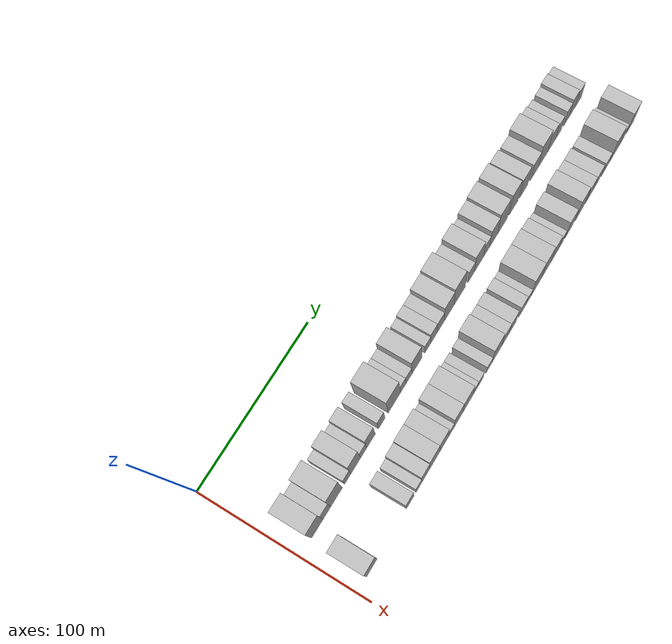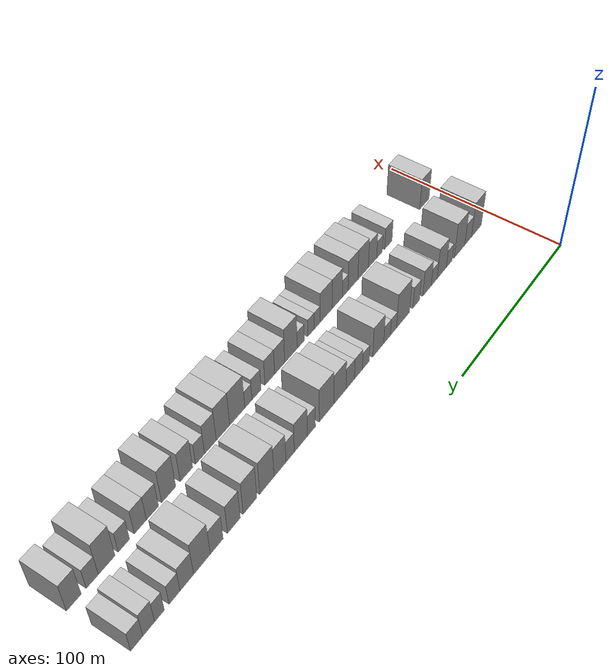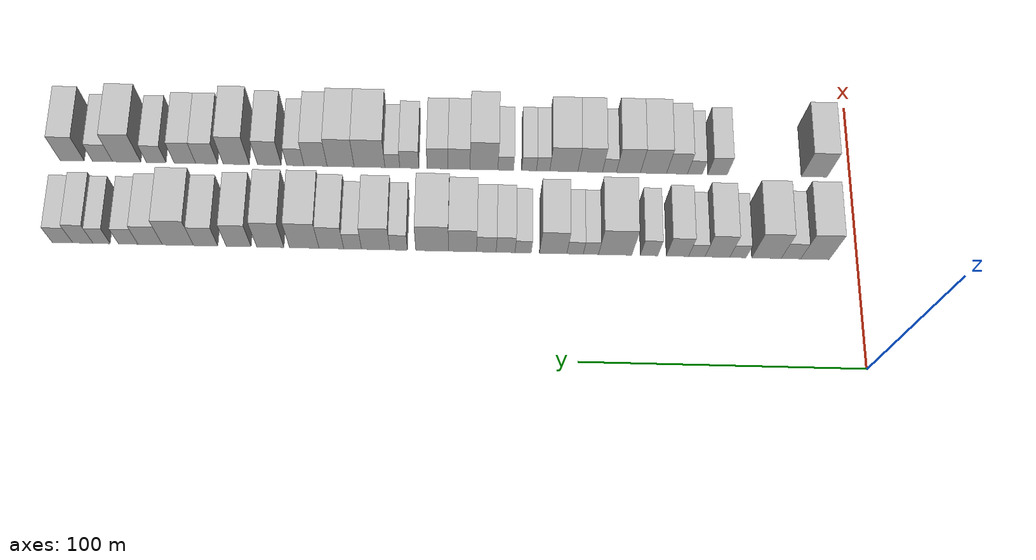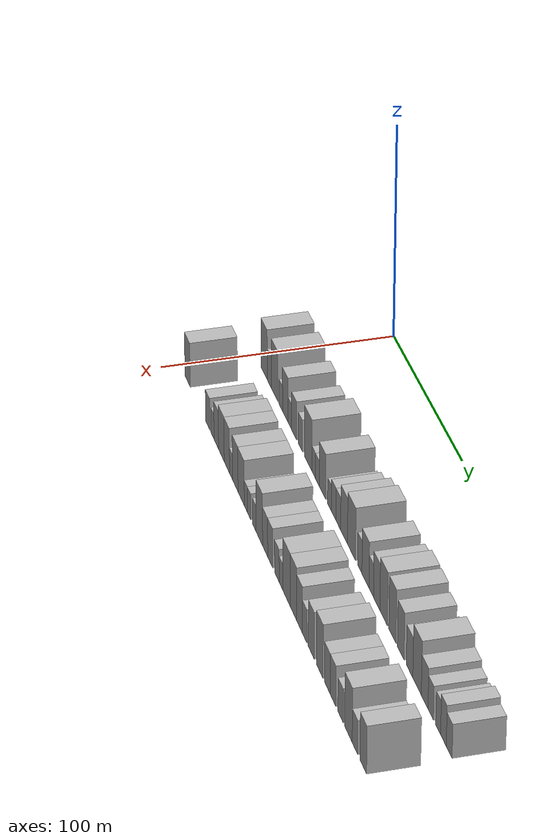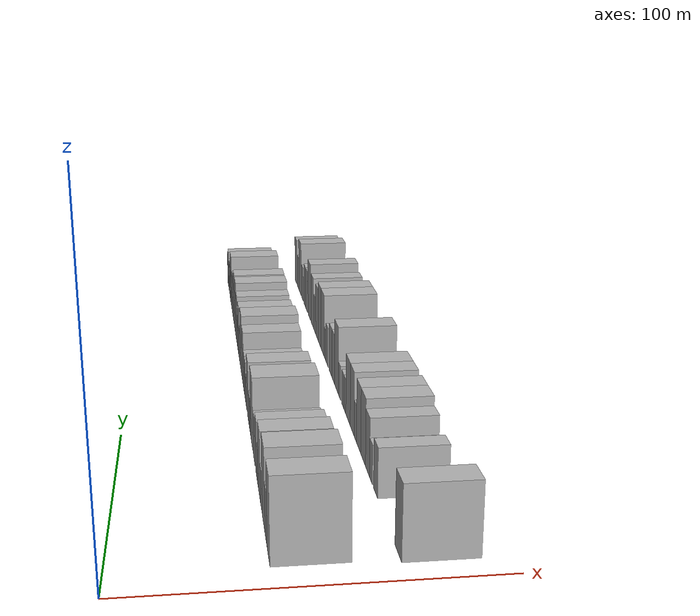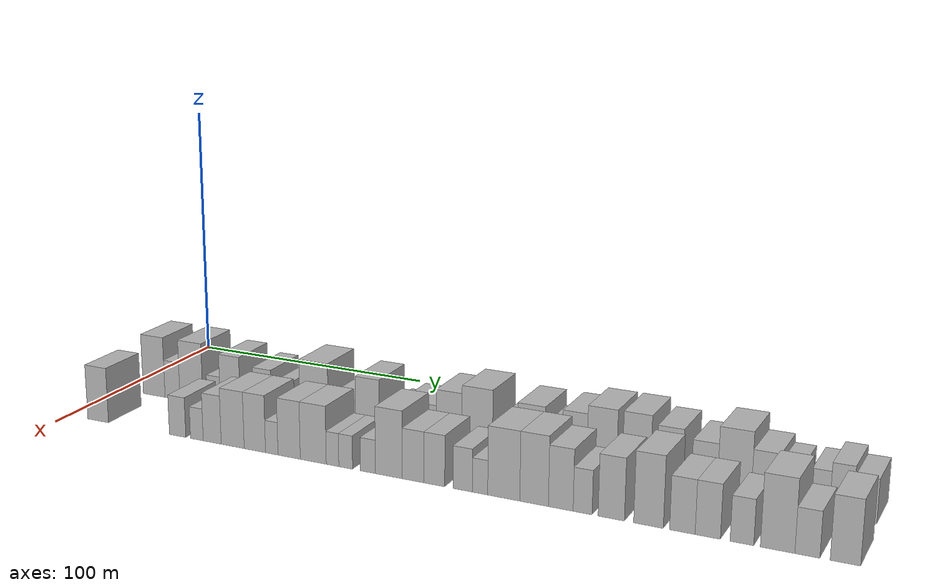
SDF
<sdf version="1.6">
 <world name="default">
  <model name="building_33">
   <static>1</static>
   <pose>50.0000 15.2766 0 0.000000 0.000000 0.000000</pose>
   <link name="link">
    <pose>0 0 12.00 0 0 0</pose>
    <collision name="collision"><geometry><box><size>20.0000 10.1828 24.0000</size></box></geometry></collision>
    <visual name="visual">
     <cast_shadows>0</cast_shadows>
     <geometry><box><size>20.0000 10.1828 24.0000</size></box></geometry>
     <material>
      <script>
       <uri>model://HANNAS_wall/materials/scripts</uri>
       <uri>model://HANNAS_wall/materials/textures</uri>
       <name>vrc/HANNAS_wall</name>
      </script>
     </material>
    </visual>
   </link>
  </model>
  <model name="building_34">
   <static>1</static>
   <pose>50.0000 23.8390 0 0.000000 0.000000 0.000000</pose>
   <link name="link">
    <pose>0 0 7.50 0 0 0</pose>
    <collision name="collision"><geometry><box><size>20.0000 6.9421 15.0000</size></box></geometry></collision>
    <visual name="visual">
     <cast_shadows>0</cast_shadows>
     <geometry><box><size>20.0000 6.9421 15.0000</size></box></geometry>
     <material>
      <script>
       <uri>model://HANNAS_wall/materials/scripts</uri>
       <uri>model://HANNAS_wall/materials/textures</uri>
       <name>vrc/HANNAS_wall</name>
      </script>
     </material>
    </visual>
   </link>
  </model>
  <model name="building_35">
   <static>1</static>
   <pose>50.0000 32.5696 0 0.000000 0.000000 0.000000</pose>
   <link name="link">
    <pose>0 0 12.00 0 0 0</pose>
    <collision name="collision"><geometry><box><size>20.0000 10.5189 24.0000</size></box></geometry></collision>
    <visual name="visual">
     <cast_shadows>0</cast_shadows>
     <geometry><box><size>20.0000 10.5189 24.0000</size></box></geometry>
     <material>
      <script>
       <uri>model://HANNAS_wall/materials/scripts</uri>
       <uri>model://HANNAS_wall/materials/textures</uri>
       <name>vrc/HANNAS_wall</name>
      </script>
     </material>
    </visual>
   </link>
  </model>
  <model name="building_36">
   <static>1</static>
   <pose>50.0000 42.7476 0 0.000000 0.000000 0.000000</pose>
   <link name="link">
    <pose>0 0 6.00 0 0 0</pose>
    <collision name="collision"><geometry><box><size>20.0000 5.8370 12.0000</size></box></geometry></collision>
    <visual name="visual">
     <cast_shadows>0</cast_shadows>
     <geometry><box><size>20.0000 5.8370 12.0000</size></box></geometry>
     <material>
      <script>
       <uri>model://HANNAS_wall/materials/scripts</uri>
       <uri>model://HANNAS_wall/materials/textures</uri>
       <name>vrc/HANNAS_wall</name>
      </script>
     </material>
    </visual>
   </link>
  </model>
  <model name="building_37">
   <static>1</static>
   <pose>50.0000 50.1167 0 0.000000 0.000000 0.000000</pose>
   <link name="link">
    <pose>0 0 10.50 0 0 0</pose>
    <collision name="collision"><geometry><box><size>20.0000 8.9014 21.0000</size></box></geometry></collision>
    <visual name="visual">
     <cast_shadows>0</cast_shadows>
     <geometry><box><size>20.0000 8.9014 21.0000</size></box></geometry>
     <material>
      <script>
       <uri>model://HANNAS_wall/materials/scripts</uri>
       <uri>model://HANNAS_wall/materials/textures</uri>
       <name>vrc/HANNAS_wall</name>
      </script>
     </material>
    </visual>
   </link>
  </model>
  <model name="building_38">
   <static>1</static>
   <pose>50.0000 57.4729 0 0.000000 0.000000 0.000000</pose>
   <link name="link">
    <pose>0 0 6.00 0 0 0</pose>
    <collision name="collision"><geometry><box><size>20.0000 5.8109 12.0000</size></box></geometry></collision>
    <visual name="visual">
     <cast_shadows>0</cast_shadows>
     <geometry><box><size>20.0000 5.8109 12.0000</size></box></geometry>
     <material>
      <script>
       <uri>model://HANNAS_wall/materials/scripts</uri>
       <uri>model://HANNAS_wall/materials/textures</uri>
       <name>vrc/HANNAS_wall</name>
      </script>
     </material>
    </visual>
   </link>
  </model>
  <model name="building_39">
   <static>1</static>
   <pose>50.0000 64.3631 0 0.000000 0.000000 0.000000</pose>
   <link name="link">
    <pose>0 0 9.00 0 0 0</pose>
    <collision name="collision"><geometry><box><size>20.0000 7.9696 18.0000</size></box></geometry></collision>
    <visual name="visual">
     <cast_shadows>0</cast_shadows>
     <geometry><box><size>20.0000 7.9696 18.0000</size></box></geometry>
     <material>
      <script>
       <uri>model://HANNAS_wall/materials/scripts</uri>
       <uri>model://HANNAS_wall/materials/textures</uri>
       <name>vrc/HANNAS_wall</name>
      </script>
     </material>
    </visual>
   </link>
  </model>
  <model name="building_40">
   <static>1</static>
   <pose>50.0000 74.4802 0 0.000000 0.000000 0.000000</pose>
   <link name="link">
    <pose>0 0 7.50 0 0 0</pose>
    <collision name="collision"><geometry><box><size>20.0000 6.2648 15.0000</size></box></geometry></collision>
    <visual name="visual">
     <cast_shadows>0</cast_shadows>
     <geometry><box><size>20.0000 6.2648 15.0000</size></box></geometry>
     <material>
      <script>
       <uri>model://HANNAS_wall/materials/scripts</uri>
       <uri>model://HANNAS_wall/materials/textures</uri>
       <name>vrc/HANNAS_wall</name>
      </script>
     </material>
    </visual>
   </link>
  </model>
  <model name="building_41">
   <static>1</static>
   <pose>50.0000 86.5735 0 0.000000 0.000000 0.000000</pose>
   <link name="link">
    <pose>0 0 12.00 0 0 0</pose>
    <collision name="collision"><geometry><box><size>20.0000 11.9218 24.0000</size></box></geometry></collision>
    <visual name="visual">
     <cast_shadows>0</cast_shadows>
     <geometry><box><size>20.0000 11.9218 24.0000</size></box></geometry>
     <material>
      <script>
       <uri>model://HANNAS_wall/materials/scripts</uri>
       <uri>model://HANNAS_wall/materials/textures</uri>
       <name>vrc/HANNAS_wall</name>
      </script>
     </material>
    </visual>
   </link>
  </model>
  <model name="building_42">
   <static>1</static>
   <pose>50.0000 95.2675 0 0.000000 0.000000 0.000000</pose>
   <link name="link">
    <pose>0 0 6.00 0 0 0</pose>
    <collision name="collision"><geometry><box><size>20.0000 5.4662 12.0000</size></box></geometry></collision>
    <visual name="visual">
     <cast_shadows>0</cast_shadows>
     <geometry><box><size>20.0000 5.4662 12.0000</size></box></geometry>
     <material>
      <script>
       <uri>model://HANNAS_wall/materials/scripts</uri>
       <uri>model://HANNAS_wall/materials/textures</uri>
       <name>vrc/HANNAS_wall</name>
      </script>
     </material>
    </visual>
   </link>
  </model>
  <model name="building_43">
   <static>1</static>
   <pose>50.0000 100.9305 0 0.000000 0.000000 0.000000</pose>
   <link name="link">
    <pose>0 0 6.00 0 0 0</pose>
    <collision name="collision"><geometry><box><size>20.0000 5.8598 12.0000</size></box></geometry></collision>
    <visual name="visual">
     <cast_shadows>0</cast_shadows>
     <geometry><box><size>20.0000 5.8598 12.0000</size></box></geometry>
     <material>
      <script>
       <uri>model://HANNAS_wall/materials/scripts</uri>
       <uri>model://HANNAS_wall/materials/textures</uri>
       <name>vrc/HANNAS_wall</name>
      </script>
     </material>
    </visual>
   </link>
  </model>
  <model name="building_44">
   <static>1</static>
   <pose>50.0000 108.7280 0 0.000000 0.000000 0.000000</pose>
   <link name="link">
    <pose>0 0 10.50 0 0 0</pose>
    <collision name="collision"><geometry><box><size>20.0000 9.7352 21.0000</size></box></geometry></collision>
    <visual name="visual">
     <cast_shadows>0</cast_shadows>
     <geometry><box><size>20.0000 9.7352 21.0000</size></box></geometry>
     <material>
      <script>
       <uri>model://HANNAS_wall/materials/scripts</uri>
       <uri>model://HANNAS_wall/materials/textures</uri>
       <name>vrc/HANNAS_wall</name>
      </script>
     </material>
    </visual>
   </link>
  </model>
  <model name="building_45">
   <static>1</static>
   <pose>50.0000 119.4897 0 0.000000 0.000000 0.000000</pose>
   <link name="link">
    <pose>0 0 6.00 0 0 0</pose>
    <collision name="collision"><geometry><box><size>20.0000 5.7882 12.0000</size></box></geometry></collision>
    <visual name="visual">
     <cast_shadows>0</cast_shadows>
     <geometry><box><size>20.0000 5.7882 12.0000</size></box></geometry>
     <material>
      <script>
       <uri>model://HANNAS_wall/materials/scripts</uri>
       <uri>model://HANNAS_wall/materials/textures</uri>
       <name>vrc/HANNAS_wall</name>
      </script>
     </material>
    </visual>
   </link>
  </model>
  <model name="building_46">
   <static>1</static>
   <pose>50.0000 125.7667 0 0.000000 0.000000 0.000000</pose>
   <link name="link">
    <pose>0 0 7.50 0 0 0</pose>
    <collision name="collision"><geometry><box><size>20.0000 6.7656 15.0000</size></box></geometry></collision>
    <visual name="visual">
     <cast_shadows>0</cast_shadows>
     <geometry><box><size>20.0000 6.7656 15.0000</size></box></geometry>
     <material>
      <script>
       <uri>model://HANNAS_wall/materials/scripts</uri>
       <uri>model://HANNAS_wall/materials/textures</uri>
       <name>vrc/HANNAS_wall</name>
      </script>
     </material>
    </visual>
   </link>
  </model>
  <model name="building_47">
   <static>1</static>
   <pose>50.0000 132.6461 0 0.000000 0.000000 0.000000</pose>
   <link name="link">
    <pose>0 0 7.50 0 0 0</pose>
    <collision name="collision"><geometry><box><size>20.0000 6.9932 15.0000</size></box></geometry></collision>
    <visual name="visual">
     <cast_shadows>0</cast_shadows>
     <geometry><box><size>20.0000 6.9932 15.0000</size></box></geometry>
     <material>
      <script>
       <uri>model://HANNAS_wall/materials/scripts</uri>
       <uri>model://HANNAS_wall/materials/textures</uri>
       <name>vrc/HANNAS_wall</name>
      </script>
     </material>
    </visual>
   </link>
  </model>
  <model name="building_48">
   <static>1</static>
   <pose>50.0000 141.1741 0 0.000000 0.000000 0.000000</pose>
   <link name="link">
    <pose>0 0 10.50 0 0 0</pose>
    <collision name="collision"><geometry><box><size>20.0000 10.0627 21.0000</size></box></geometry></collision>
    <visual name="visual">
     <cast_shadows>0</cast_shadows>
     <geometry><box><size>20.0000 10.0627 21.0000</size></box></geometry>
     <material>
      <script>
       <uri>model://HANNAS_wall/materials/scripts</uri>
       <uri>model://HANNAS_wall/materials/textures</uri>
       <name>vrc/HANNAS_wall</name>
      </script>
     </material>
    </visual>
   </link>
  </model>
  <model name="building_49">
   <static>1</static>
   <pose>50.0000 152.0346 0 0.000000 0.000000 0.000000</pose>
   <link name="link">
    <pose>0 0 12.00 0 0 0</pose>
    <collision name="collision"><geometry><box><size>20.0000 11.6583 24.0000</size></box></geometry></collision>
    <visual name="visual">
     <cast_shadows>0</cast_shadows>
     <geometry><box><size>20.0000 11.6583 24.0000</size></box></geometry>
     <material>
      <script>
       <uri>model://HANNAS_wall/materials/scripts</uri>
       <uri>model://HANNAS_wall/materials/textures</uri>
       <name>vrc/HANNAS_wall</name>
      </script>
     </material>
    </visual>
   </link>
  </model>
  <model name="building_50">
   <static>1</static>
   <pose>50.0000 164.0405 0 0.000000 0.000000 0.000000</pose>
   <link name="link">
    <pose>0 0 7.50 0 0 0</pose>
    <collision name="collision"><geometry><box><size>20.0000 6.3535 15.0000</size></box></geometry></collision>
    <visual name="visual">
     <cast_shadows>0</cast_shadows>
     <geometry><box><size>20.0000 6.3535 15.0000</size></box></geometry>
     <material>
      <script>
       <uri>model://HANNAS_wall/materials/scripts</uri>
       <uri>model://HANNAS_wall/materials/textures</uri>
       <name>vrc/HANNAS_wall</name>
      </script>
     </material>
    </visual>
   </link>
  </model>
  <model name="building_51">
   <static>1</static>
   <pose>50.0000 172.2589 0 0.000000 0.000000 0.000000</pose>
   <link name="link">
    <pose>0 0 10.50 0 0 0</pose>
    <collision name="collision"><geometry><box><size>20.0000 10.0834 21.0000</size></box></geometry></collision>
    <visual name="visual">
     <cast_shadows>0</cast_shadows>
     <geometry><box><size>20.0000 10.0834 21.0000</size></box></geometry>
     <material>
      <script>
       <uri>model://HANNAS_wall/materials/scripts</uri>
       <uri>model://HANNAS_wall/materials/textures</uri>
       <name>vrc/HANNAS_wall</name>
      </script>
     </material>
    </visual>
   </link>
  </model>
  <model name="building_52">
   <static>1</static>
   <pose>50.0000 180.4831 0 0.000000 0.000000 0.000000</pose>
   <link name="link">
    <pose>0 0 7.50 0 0 0</pose>
    <collision name="collision"><geometry><box><size>20.0000 6.3649 15.0000</size></box></geometry></collision>
    <visual name="visual">
     <cast_shadows>0</cast_shadows>
     <geometry><box><size>20.0000 6.3649 15.0000</size></box></geometry>
     <material>
      <script>
       <uri>model://HANNAS_wall/materials/scripts</uri>
       <uri>model://HANNAS_wall/materials/textures</uri>
       <name>vrc/HANNAS_wall</name>
      </script>
     </material>
    </visual>
   </link>
  </model>
  <model name="building_53">
   <static>1</static>
   <pose>50.0000 188.1049 0 0.000000 0.000000 0.000000</pose>
   <link name="link">
    <pose>0 0 10.50 0 0 0</pose>
    <collision name="collision"><geometry><box><size>20.0000 8.8786 21.0000</size></box></geometry></collision>
    <visual name="visual">
     <cast_shadows>0</cast_shadows>
     <geometry><box><size>20.0000 8.8786 21.0000</size></box></geometry>
     <material>
      <script>
       <uri>model://HANNAS_wall/materials/scripts</uri>
       <uri>model://HANNAS_wall/materials/textures</uri>
       <name>vrc/HANNAS_wall</name>
      </script>
     </material>
    </visual>
   </link>
  </model>
  <model name="building_54">
   <static>1</static>
   <pose>50.0000 197.8202 0 0.000000 0.000000 0.000000</pose>
   <link name="link">
    <pose>0 0 12.00 0 0 0</pose>
    <collision name="collision"><geometry><box><size>20.0000 10.5522 24.0000</size></box></geometry></collision>
    <visual name="visual">
     <cast_shadows>0</cast_shadows>
     <geometry><box><size>20.0000 10.5522 24.0000</size></box></geometry>
     <material>
      <script>
       <uri>model://HANNAS_wall/materials/scripts</uri>
       <uri>model://HANNAS_wall/materials/textures</uri>
       <name>vrc/HANNAS_wall</name>
      </script>
     </material>
    </visual>
   </link>
  </model>
  <model name="building_55">
   <static>1</static>
   <pose>50.0000 209.9835 0 0.000000 0.000000 0.000000</pose>
   <link name="link">
    <pose>0 0 12.00 0 0 0</pose>
    <collision name="collision"><geometry><box><size>20.0000 9.7743 24.0000</size></box></geometry></collision>
    <visual name="visual">
     <cast_shadows>0</cast_shadows>
     <geometry><box><size>20.0000 9.7743 24.0000</size></box></geometry>
     <material>
      <script>
       <uri>model://HANNAS_wall/materials/scripts</uri>
       <uri>model://HANNAS_wall/materials/textures</uri>
       <name>vrc/HANNAS_wall</name>
      </script>
     </material>
    </visual>
   </link>
  </model>
  <model name="building_56">
   <static>1</static>
   <pose>50.0000 221.3394 0 0.000000 0.000000 0.000000</pose>
   <link name="link">
    <pose>0 0 10.50 0 0 0</pose>
    <collision name="collision"><geometry><box><size>20.0000 8.9375 21.0000</size></box></geometry></collision>
    <visual name="visual">
     <cast_shadows>0</cast_shadows>
     <geometry><box><size>20.0000 8.9375 21.0000</size></box></geometry>
     <material>
      <script>
       <uri>model://HANNAS_wall/materials/scripts</uri>
       <uri>model://HANNAS_wall/materials/textures</uri>
       <name>vrc/HANNAS_wall</name>
      </script>
     </material>
    </visual>
   </link>
  </model>
  <model name="building_57">
   <static>1</static>
   <pose>50.0000 233.1645 0 0.000000 0.000000 0.000000</pose>
   <link name="link">
    <pose>0 0 9.00 0 0 0</pose>
    <collision name="collision"><geometry><box><size>20.0000 8.7126 18.0000</size></box></geometry></collision>
    <visual name="visual">
     <cast_shadows>0</cast_shadows>
     <geometry><box><size>20.0000 8.7126 18.0000</size></box></geometry>
     <material>
      <script>
       <uri>model://HANNAS_wall/materials/scripts</uri>
       <uri>model://HANNAS_wall/materials/textures</uri>
       <name>vrc/HANNAS_wall</name>
      </script>
     </material>
    </visual>
   </link>
  </model>
  <model name="building_58">
   <static>1</static>
   <pose>50.0000 243.1120 0 0.000000 0.000000 0.000000</pose>
   <link name="link">
    <pose>0 0 12.00 0 0 0</pose>
    <collision name="collision"><geometry><box><size>20.0000 11.1826 24.0000</size></box></geometry></collision>
    <visual name="visual">
     <cast_shadows>0</cast_shadows>
     <geometry><box><size>20.0000 11.1826 24.0000</size></box></geometry>
     <material>
      <script>
       <uri>model://HANNAS_wall/materials/scripts</uri>
       <uri>model://HANNAS_wall/materials/textures</uri>
       <name>vrc/HANNAS_wall</name>
      </script>
     </material>
    </visual>
   </link>
  </model>
  <model name="building_59">
   <static>1</static>
   <pose>50.0000 253.0980 0 0.000000 0.000000 0.000000</pose>
   <link name="link">
    <pose>0 0 9.00 0 0 0</pose>
    <collision name="collision"><geometry><box><size>20.0000 8.7894 18.0000</size></box></geometry></collision>
    <visual name="visual">
     <cast_shadows>0</cast_shadows>
     <geometry><box><size>20.0000 8.7894 18.0000</size></box></geometry>
     <material>
      <script>
       <uri>model://HANNAS_wall/materials/scripts</uri>
       <uri>model://HANNAS_wall/materials/textures</uri>
       <name>vrc/HANNAS_wall</name>
      </script>
     </material>
    </visual>
   </link>
  </model>
  <model name="building_60">
   <static>1</static>
   <pose>50.0000 261.0008 0 0.000000 0.000000 0.000000</pose>
   <link name="link">
    <pose>0 0 7.50 0 0 0</pose>
    <collision name="collision"><geometry><box><size>20.0000 7.0162 15.0000</size></box></geometry></collision>
    <visual name="visual">
     <cast_shadows>0</cast_shadows>
     <geometry><box><size>20.0000 7.0162 15.0000</size></box></geometry>
     <material>
      <script>
       <uri>model://HANNAS_wall/materials/scripts</uri>
       <uri>model://HANNAS_wall/materials/textures</uri>
       <name>vrc/HANNAS_wall</name>
      </script>
     </material>
    </visual>
   </link>
  </model>
  <model name="building_61">
   <static>1</static>
   <pose>50.0000 270.5838 0 0.000000 0.000000 0.000000</pose>
   <link name="link">
    <pose>0 0 7.50 0 0 0</pose>
    <collision name="collision"><geometry><box><size>20.0000 6.1498 15.0000</size></box></geometry></collision>
    <visual name="visual">
     <cast_shadows>0</cast_shadows>
     <geometry><box><size>20.0000 6.1498 15.0000</size></box></geometry>
     <material>
      <script>
       <uri>model://HANNAS_wall/materials/scripts</uri>
       <uri>model://HANNAS_wall/materials/textures</uri>
       <name>vrc/HANNAS_wall</name>
      </script>
     </material>
    </visual>
   </link>
  </model>
  <model name="building_62">
   <static>1</static>
   <pose>50.0000 277.2893 0 0.000000 0.000000 0.000000</pose>
   <link name="link">
    <pose>0 0 9.00 0 0 0</pose>
    <collision name="collision"><geometry><box><size>20.0000 7.2611 18.0000</size></box></geometry></collision>
    <visual name="visual">
     <cast_shadows>0</cast_shadows>
     <geometry><box><size>20.0000 7.2611 18.0000</size></box></geometry>
     <material>
      <script>
       <uri>model://HANNAS_wall/materials/scripts</uri>
       <uri>model://HANNAS_wall/materials/textures</uri>
       <name>vrc/HANNAS_wall</name>
      </script>
     </material>
    </visual>
   </link>
  </model>
  <model name="building_63">
   <static>1</static>
   <pose>50.0000 284.6179 0 0.000000 0.000000 0.000000</pose>
   <link name="link">
    <pose>0 0 7.50 0 0 0</pose>
    <collision name="collision"><geometry><box><size>20.0000 7.3963 15.0000</size></box></geometry></collision>
    <visual name="visual">
     <cast_shadows>0</cast_shadows>
     <geometry><box><size>20.0000 7.3963 15.0000</size></box></geometry>
     <material>
      <script>
       <uri>model://HANNAS_wall/materials/scripts</uri>
       <uri>model://HANNAS_wall/materials/textures</uri>
       <name>vrc/HANNAS_wall</name>
      </script>
     </material>
    </visual>
   </link>
  </model>
  <model name="building_92">
   <static>1</static>
   <pose>82.0000 13.2872 0 0.000000 0.000000 0.000000</pose>
   <link name="link">
    <pose>0 0 10.50 0 0 0</pose>
    <collision name="collision"><geometry><box><size>20.0000 9.4215 21.0000</size></box></geometry></collision>
    <visual name="visual">
     <cast_shadows>0</cast_shadows>
     <geometry><box><size>20.0000 9.4215 21.0000</size></box></geometry>
     <material>
      <script>
       <uri>model://HANNAS_wall/materials/scripts</uri>
       <uri>model://HANNAS_wall/materials/textures</uri>
       <name>vrc/HANNAS_wall</name>
      </script>
     </material>
    </visual>
   </link>
  </model>
  <model name="building_93">
   <static>1</static>
   <pose>82.0000 48.6169 0 0.000000 0.000000 0.000000</pose>
   <link name="link">
    <pose>0 0 7.50 0 0 0</pose>
    <collision name="collision"><geometry><box><size>20.0000 7.0793 15.0000</size></box></geometry></collision>
    <visual name="visual">
     <cast_shadows>0</cast_shadows>
     <geometry><box><size>20.0000 7.0793 15.0000</size></box></geometry>
     <material>
      <script>
       <uri>model://HANNAS_wall/materials/scripts</uri>
       <uri>model://HANNAS_wall/materials/textures</uri>
       <name>vrc/HANNAS_wall</name>
      </script>
     </material>
    </visual>
   </link>
  </model>
  <model name="building_94">
   <static>1</static>
   <pose>82.0000 56.8759 0 0.000000 0.000000 0.000000</pose>
   <link name="link">
    <pose>0 0 6.00 0 0 0</pose>
    <collision name="collision"><geometry><box><size>20.0000 5.4388 12.0000</size></box></geometry></collision>
    <visual name="visual">
     <cast_shadows>0</cast_shadows>
     <geometry><box><size>20.0000 5.4388 12.0000</size></box></geometry>
     <material>
      <script>
       <uri>model://HANNAS_wall/materials/scripts</uri>
       <uri>model://HANNAS_wall/materials/textures</uri>
       <name>vrc/HANNAS_wall</name>
      </script>
     </material>
    </visual>
   </link>
  </model>
  <model name="building_95">
   <static>1</static>
   <pose>82.0000 63.4059 0 0.000000 0.000000 0.000000</pose>
   <link name="link">
    <pose>0 0 9.00 0 0 0</pose>
    <collision name="collision"><geometry><box><size>20.0000 7.6211 18.0000</size></box></geometry></collision>
    <visual name="visual">
     <cast_shadows>0</cast_shadows>
     <geometry><box><size>20.0000 7.6211 18.0000</size></box></geometry>
     <material>
      <script>
       <uri>model://HANNAS_wall/materials/scripts</uri>
       <uri>model://HANNAS_wall/materials/textures</uri>
       <name>vrc/HANNAS_wall</name>
      </script>
     </material>
    </visual>
   </link>
  </model>
  <model name="building_96">
   <static>1</static>
   <pose>82.0000 72.0056 0 0.000000 0.000000 0.000000</pose>
   <link name="link">
    <pose>0 0 10.50 0 0 0</pose>
    <collision name="collision"><geometry><box><size>20.0000 9.5783 21.0000</size></box></geometry></collision>
    <visual name="visual">
     <cast_shadows>0</cast_shadows>
     <geometry><box><size>20.0000 9.5783 21.0000</size></box></geometry>
     <material>
      <script>
       <uri>model://HANNAS_wall/materials/scripts</uri>
       <uri>model://HANNAS_wall/materials/textures</uri>
       <name>vrc/HANNAS_wall</name>
      </script>
     </material>
    </visual>
   </link>
  </model>
  <model name="building_97">
   <static>1</static>
   <pose>82.0000 81.1815 0 0.000000 0.000000 0.000000</pose>
   <link name="link">
    <pose>0 0 10.50 0 0 0</pose>
    <collision name="collision"><geometry><box><size>20.0000 8.7735 21.0000</size></box></geometry></collision>
    <visual name="visual">
     <cast_shadows>0</cast_shadows>
     <geometry><box><size>20.0000 8.7735 21.0000</size></box></geometry>
     <material>
      <script>
       <uri>model://HANNAS_wall/materials/scripts</uri>
       <uri>model://HANNAS_wall/materials/textures</uri>
       <name>vrc/HANNAS_wall</name>
      </script>
     </material>
    </visual>
   </link>
  </model>
  <model name="building_98">
   <static>1</static>
   <pose>82.0000 88.1061 0 0.000000 0.000000 0.000000</pose>
   <link name="link">
    <pose>0 0 6.00 0 0 0</pose>
    <collision name="collision"><geometry><box><size>20.0000 5.0758 12.0000</size></box></geometry></collision>
    <visual name="visual">
     <cast_shadows>0</cast_shadows>
     <geometry><box><size>20.0000 5.0758 12.0000</size></box></geometry>
     <material>
      <script>
       <uri>model://HANNAS_wall/materials/scripts</uri>
       <uri>model://HANNAS_wall/materials/textures</uri>
       <name>vrc/HANNAS_wall</name>
      </script>
     </material>
    </visual>
   </link>
  </model>
  <model name="building_99">
   <static>1</static>
   <pose>82.0000 95.1365 0 0.000000 0.000000 0.000000</pose>
   <link name="link">
    <pose>0 0 10.50 0 0 0</pose>
    <collision name="collision"><geometry><box><size>20.0000 8.9850 21.0000</size></box></geometry></collision>
    <visual name="visual">
     <cast_shadows>0</cast_shadows>
     <geometry><box><size>20.0000 8.9850 21.0000</size></box></geometry>
     <material>
      <script>
       <uri>model://HANNAS_wall/materials/scripts</uri>
       <uri>model://HANNAS_wall/materials/textures</uri>
       <name>vrc/HANNAS_wall</name>
      </script>
     </material>
    </visual>
   </link>
  </model>
  <model name="building_100">
   <static>1</static>
   <pose>82.0000 104.7780 0 0.000000 0.000000 0.000000</pose>
   <link name="link">
    <pose>0 0 10.50 0 0 0</pose>
    <collision name="collision"><geometry><box><size>20.0000 10.2980 21.0000</size></box></geometry></collision>
    <visual name="visual">
     <cast_shadows>0</cast_shadows>
     <geometry><box><size>20.0000 10.2980 21.0000</size></box></geometry>
     <material>
      <script>
       <uri>model://HANNAS_wall/materials/scripts</uri>
       <uri>model://HANNAS_wall/materials/textures</uri>
       <name>vrc/HANNAS_wall</name>
      </script>
     </material>
    </visual>
   </link>
  </model>
  <model name="building_101">
   <static>1</static>
   <pose>82.0000 112.3778 0 0.000000 0.000000 0.000000</pose>
   <link name="link">
    <pose>0 0 6.00 0 0 0</pose>
    <collision name="collision"><geometry><box><size>20.0000 4.9016 12.0000</size></box></geometry></collision>
    <visual name="visual">
     <cast_shadows>0</cast_shadows>
     <geometry><box><size>20.0000 4.9016 12.0000</size></box></geometry>
     <material>
      <script>
       <uri>model://HANNAS_wall/materials/scripts</uri>
       <uri>model://HANNAS_wall/materials/textures</uri>
       <name>vrc/HANNAS_wall</name>
      </script>
     </material>
    </visual>
   </link>
  </model>
  <model name="building_102">
   <static>1</static>
   <pose>82.0000 117.5018 0 0.000000 0.000000 0.000000</pose>
   <link name="link">
    <pose>0 0 6.00 0 0 0</pose>
    <collision name="collision"><geometry><box><size>20.0000 5.3462 12.0000</size></box></geometry></collision>
    <visual name="visual">
     <cast_shadows>0</cast_shadows>
     <geometry><box><size>20.0000 5.3462 12.0000</size></box></geometry>
     <material>
      <script>
       <uri>model://HANNAS_wall/materials/scripts</uri>
       <uri>model://HANNAS_wall/materials/textures</uri>
       <name>vrc/HANNAS_wall</name>
      </script>
     </material>
    </visual>
   </link>
  </model>
  <model name="building_103">
   <static>1</static>
   <pose>82.0000 126.0602 0 0.000000 0.000000 0.000000</pose>
   <link name="link">
    <pose>0 0 6.00 0 0 0</pose>
    <collision name="collision"><geometry><box><size>20.0000 5.7706 12.0000</size></box></geometry></collision>
    <visual name="visual">
     <cast_shadows>0</cast_shadows>
     <geometry><box><size>20.0000 5.7706 12.0000</size></box></geometry>
     <material>
      <script>
       <uri>model://HANNAS_wall/materials/scripts</uri>
       <uri>model://HANNAS_wall/materials/textures</uri>
       <name>vrc/HANNAS_wall</name>
      </script>
     </material>
    </visual>
   </link>
  </model>
  <model name="building_104">
   <static>1</static>
   <pose>82.0000 134.0313 0 0.000000 0.000000 0.000000</pose>
   <link name="link">
    <pose>0 0 12.00 0 0 0</pose>
    <collision name="collision"><geometry><box><size>20.0000 10.1717 24.0000</size></box></geometry></collision>
    <visual name="visual">
     <cast_shadows>0</cast_shadows>
     <geometry><box><size>20.0000 10.1717 24.0000</size></box></geometry>
     <material>
      <script>
       <uri>model://HANNAS_wall/materials/scripts</uri>
       <uri>model://HANNAS_wall/materials/textures</uri>
       <name>vrc/HANNAS_wall</name>
      </script>
     </material>
    </visual>
   </link>
  </model>
  <model name="building_105">
   <static>1</static>
   <pose>82.0000 143.1388 0 0.000000 0.000000 0.000000</pose>
   <link name="link">
    <pose>0 0 9.00 0 0 0</pose>
    <collision name="collision"><geometry><box><size>20.0000 8.0433 18.0000</size></box></geometry></collision>
    <visual name="visual">
     <cast_shadows>0</cast_shadows>
     <geometry><box><size>20.0000 8.0433 18.0000</size></box></geometry>
     <material>
      <script>
       <uri>model://HANNAS_wall/materials/scripts</uri>
       <uri>model://HANNAS_wall/materials/textures</uri>
       <name>vrc/HANNAS_wall</name>
      </script>
     </material>
    </visual>
   </link>
  </model>
  <model name="building_106">
   <static>1</static>
   <pose>82.0000 150.9794 0 0.000000 0.000000 0.000000</pose>
   <link name="link">
    <pose>0 0 9.00 0 0 0</pose>
    <collision name="collision"><geometry><box><size>20.0000 7.6380 18.0000</size></box></geometry></collision>
    <visual name="visual">
     <cast_shadows>0</cast_shadows>
     <geometry><box><size>20.0000 7.6380 18.0000</size></box></geometry>
     <material>
      <script>
       <uri>model://HANNAS_wall/materials/scripts</uri>
       <uri>model://HANNAS_wall/materials/textures</uri>
       <name>vrc/HANNAS_wall</name>
      </script>
     </material>
    </visual>
   </link>
  </model>
  <model name="building_107">
   <static>1</static>
   <pose>82.0000 161.3124 0 0.000000 0.000000 0.000000</pose>
   <link name="link">
    <pose>0 0 7.50 0 0 0</pose>
    <collision name="collision"><geometry><box><size>20.0000 7.0280 15.0000</size></box></geometry></collision>
    <visual name="visual">
     <cast_shadows>0</cast_shadows>
     <geometry><box><size>20.0000 7.0280 15.0000</size></box></geometry>
     <material>
      <script>
       <uri>model://HANNAS_wall/materials/scripts</uri>
       <uri>model://HANNAS_wall/materials/textures</uri>
       <name>vrc/HANNAS_wall</name>
      </script>
     </material>
    </visual>
   </link>
  </model>
  <model name="building_108">
   <static>1</static>
   <pose>82.0000 167.5485 0 0.000000 0.000000 0.000000</pose>
   <link name="link">
    <pose>0 0 6.00 0 0 0</pose>
    <collision name="collision"><geometry><box><size>20.0000 5.4441 12.0000</size></box></geometry></collision>
    <visual name="visual">
     <cast_shadows>0</cast_shadows>
     <geometry><box><size>20.0000 5.4441 12.0000</size></box></geometry>
     <material>
      <script>
       <uri>model://HANNAS_wall/materials/scripts</uri>
       <uri>model://HANNAS_wall/materials/textures</uri>
       <name>vrc/HANNAS_wall</name>
      </script>
     </material>
    </visual>
   </link>
  </model>
  <model name="building_109">
   <static>1</static>
   <pose>82.0000 175.9228 0 0.000000 0.000000 0.000000</pose>
   <link name="link">
    <pose>0 0 12.00 0 0 0</pose>
    <collision name="collision"><geometry><box><size>20.0000 11.3045 24.0000</size></box></geometry></collision>
    <visual name="visual">
     <cast_shadows>0</cast_shadows>
     <geometry><box><size>20.0000 11.3045 24.0000</size></box></geometry>
     <material>
      <script>
       <uri>model://HANNAS_wall/materials/scripts</uri>
       <uri>model://HANNAS_wall/materials/textures</uri>
       <name>vrc/HANNAS_wall</name>
      </script>
     </material>
    </visual>
   </link>
  </model>
  <model name="building_110">
   <static>1</static>
   <pose>82.0000 186.5198 0 0.000000 0.000000 0.000000</pose>
   <link name="link">
    <pose>0 0 12.00 0 0 0</pose>
    <collision name="collision"><geometry><box><size>20.0000 9.8895 24.0000</size></box></geometry></collision>
    <visual name="visual">
     <cast_shadows>0</cast_shadows>
     <geometry><box><size>20.0000 9.8895 24.0000</size></box></geometry>
     <material>
      <script>
       <uri>model://HANNAS_wall/materials/scripts</uri>
       <uri>model://HANNAS_wall/materials/textures</uri>
       <name>vrc/HANNAS_wall</name>
      </script>
     </material>
    </visual>
   </link>
  </model>
  <model name="building_111">
   <static>1</static>
   <pose>82.0000 195.6824 0 0.000000 0.000000 0.000000</pose>
   <link name="link">
    <pose>0 0 10.50 0 0 0</pose>
    <collision name="collision"><geometry><box><size>20.0000 8.4355 21.0000</size></box></geometry></collision>
    <visual name="visual">
     <cast_shadows>0</cast_shadows>
     <geometry><box><size>20.0000 8.4355 21.0000</size></box></geometry>
     <material>
      <script>
       <uri>model://HANNAS_wall/materials/scripts</uri>
       <uri>model://HANNAS_wall/materials/textures</uri>
       <name>vrc/HANNAS_wall</name>
      </script>
     </material>
    </visual>
   </link>
  </model>
  <model name="building_112">
   <static>1</static>
   <pose>82.0000 203.0960 0 0.000000 0.000000 0.000000</pose>
   <link name="link">
    <pose>0 0 7.50 0 0 0</pose>
    <collision name="collision"><geometry><box><size>20.0000 6.3917 15.0000</size></box></geometry></collision>
    <visual name="visual">
     <cast_shadows>0</cast_shadows>
     <geometry><box><size>20.0000 6.3917 15.0000</size></box></geometry>
     <material>
      <script>
       <uri>model://HANNAS_wall/materials/scripts</uri>
       <uri>model://HANNAS_wall/materials/textures</uri>
       <name>vrc/HANNAS_wall</name>
      </script>
     </material>
    </visual>
   </link>
  </model>
  <model name="building_113">
   <static>1</static>
   <pose>82.0000 212.6441 0 0.000000 0.000000 0.000000</pose>
   <link name="link">
    <pose>0 0 10.50 0 0 0</pose>
    <collision name="collision"><geometry><box><size>20.0000 8.7045 21.0000</size></box></geometry></collision>
    <visual name="visual">
     <cast_shadows>0</cast_shadows>
     <geometry><box><size>20.0000 8.7045 21.0000</size></box></geometry>
     <material>
      <script>
       <uri>model://HANNAS_wall/materials/scripts</uri>
       <uri>model://HANNAS_wall/materials/textures</uri>
       <name>vrc/HANNAS_wall</name>
      </script>
     </material>
    </visual>
   </link>
  </model>
  <model name="building_114">
   <static>1</static>
   <pose>82.0000 224.7996 0 0.000000 0.000000 0.000000</pose>
   <link name="link">
    <pose>0 0 12.00 0 0 0</pose>
    <collision name="collision"><geometry><box><size>20.0000 9.6066 24.0000</size></box></geometry></collision>
    <visual name="visual">
     <cast_shadows>0</cast_shadows>
     <geometry><box><size>20.0000 9.6066 24.0000</size></box></geometry>
     <material>
      <script>
       <uri>model://HANNAS_wall/materials/scripts</uri>
       <uri>model://HANNAS_wall/materials/textures</uri>
       <name>vrc/HANNAS_wall</name>
      </script>
     </material>
    </visual>
   </link>
  </model>
  <model name="building_115">
   <static>1</static>
   <pose>82.0000 235.6548 0 0.000000 0.000000 0.000000</pose>
   <link name="link">
    <pose>0 0 9.00 0 0 0</pose>
    <collision name="collision"><geometry><box><size>20.0000 8.1038 18.0000</size></box></geometry></collision>
    <visual name="visual">
     <cast_shadows>0</cast_shadows>
     <geometry><box><size>20.0000 8.1038 18.0000</size></box></geometry>
     <material>
      <script>
       <uri>model://HANNAS_wall/materials/scripts</uri>
       <uri>model://HANNAS_wall/materials/textures</uri>
       <name>vrc/HANNAS_wall</name>
      </script>
     </material>
    </visual>
   </link>
  </model>
  <model name="building_116">
   <static>1</static>
   <pose>82.0000 243.6638 0 0.000000 0.000000 0.000000</pose>
   <link name="link">
    <pose>0 0 9.00 0 0 0</pose>
    <collision name="collision"><geometry><box><size>20.0000 7.9142 18.0000</size></box></geometry></collision>
    <visual name="visual">
     <cast_shadows>0</cast_shadows>
     <geometry><box><size>20.0000 7.9142 18.0000</size></box></geometry>
     <material>
      <script>
       <uri>model://HANNAS_wall/materials/scripts</uri>
       <uri>model://HANNAS_wall/materials/textures</uri>
       <name>vrc/HANNAS_wall</name>
      </script>
     </material>
    </visual>
   </link>
  </model>
  <model name="building_117">
   <static>1</static>
   <pose>82.0000 254.2536 0 0.000000 0.000000 0.000000</pose>
   <link name="link">
    <pose>0 0 7.50 0 0 0</pose>
    <collision name="collision"><geometry><box><size>20.0000 7.2653 15.0000</size></box></geometry></collision>
    <visual name="visual">
     <cast_shadows>0</cast_shadows>
     <geometry><box><size>20.0000 7.2653 15.0000</size></box></geometry>
     <material>
      <script>
       <uri>model://HANNAS_wall/materials/scripts</uri>
       <uri>model://HANNAS_wall/materials/textures</uri>
       <name>vrc/HANNAS_wall</name>
      </script>
     </material>
    </visual>
   </link>
  </model>
  <model name="building_118">
   <static>1</static>
   <pose>82.0000 265.0813 0 0.000000 0.000000 0.000000</pose>
   <link name="link">
    <pose>0 0 12.00 0 0 0</pose>
    <collision name="collision"><geometry><box><size>20.0000 10.3901 24.0000</size></box></geometry></collision>
    <visual name="visual">
     <cast_shadows>0</cast_shadows>
     <geometry><box><size>20.0000 10.3901 24.0000</size></box></geometry>
     <material>
      <script>
       <uri>model://HANNAS_wall/materials/scripts</uri>
       <uri>model://HANNAS_wall/materials/textures</uri>
       <name>vrc/HANNAS_wall</name>
      </script>
     </material>
    </visual>
   </link>
  </model>
  <model name="building_119">
   <static>1</static>
   <pose>82.0000 273.9801 0 0.000000 0.000000 0.000000</pose>
   <link name="link">
    <pose>0 0 7.50 0 0 0</pose>
    <collision name="collision"><geometry><box><size>20.0000 7.4075 15.0000</size></box></geometry></collision>
    <visual name="visual">
     <cast_shadows>0</cast_shadows>
     <geometry><box><size>20.0000 7.4075 15.0000</size></box></geometry>
     <material>
      <script>
       <uri>model://HANNAS_wall/materials/scripts</uri>
       <uri>model://HANNAS_wall/materials/textures</uri>
       <name>vrc/HANNAS_wall</name>
      </script>
     </material>
    </visual>
   </link>
  </model>
  <model name="building_120">
   <static>1</static>
   <pose>82.0000 285.1158 0 0.000000 0.000000 0.000000</pose>
   <link name="link">
    <pose>0 0 10.50 0 0 0</pose>
    <collision name="collision"><geometry><box><size>20.0000 8.8638 21.0000</size></box></geometry></collision>
    <visual name="visual">
     <cast_shadows>0</cast_shadows>
     <geometry><box><size>20.0000 8.8638 21.0000</size></box></geometry>
     <material>
      <script>
       <uri>model://HANNAS_wall/materials/scripts</uri>
       <uri>model://HANNAS_wall/materials/textures</uri>
       <name>vrc/HANNAS_wall</name>
      </script>
     </material>
    </visual>
   </link>
  </model>
 </world>
</sdf>
